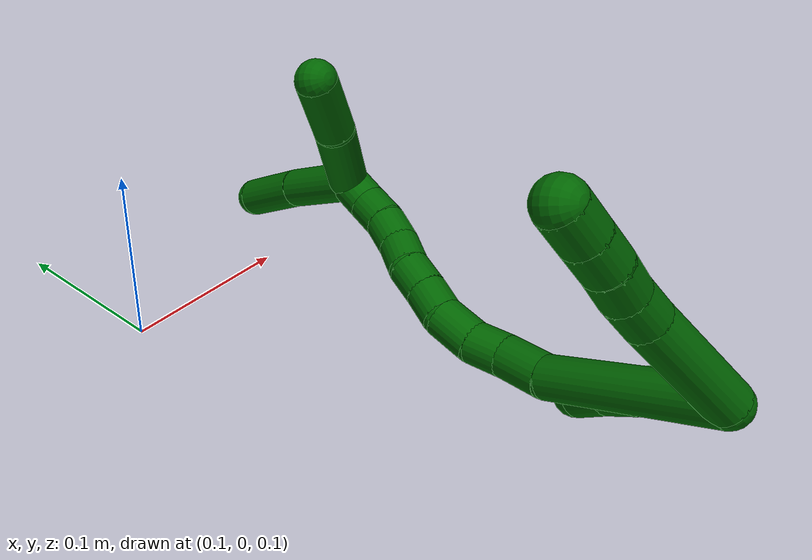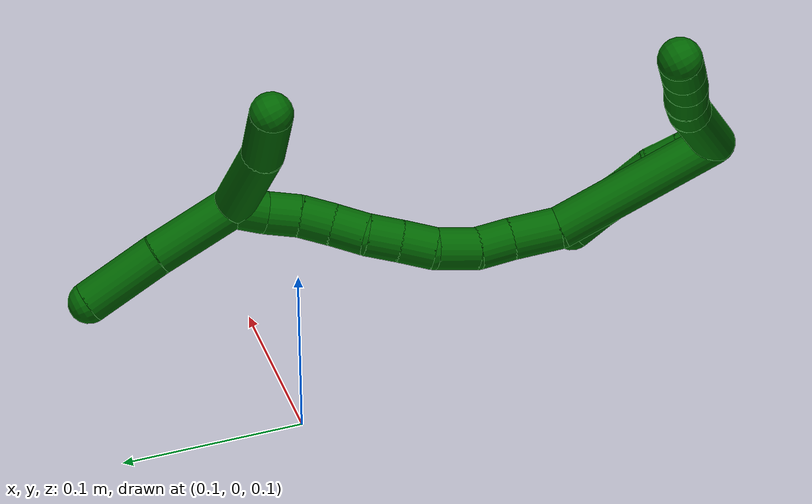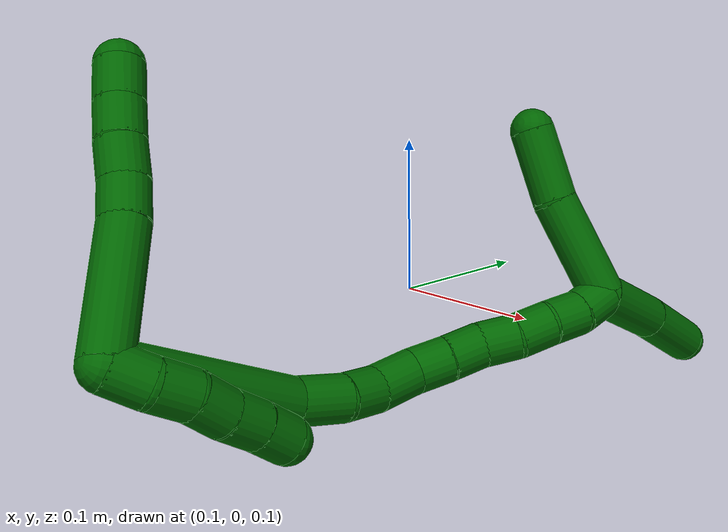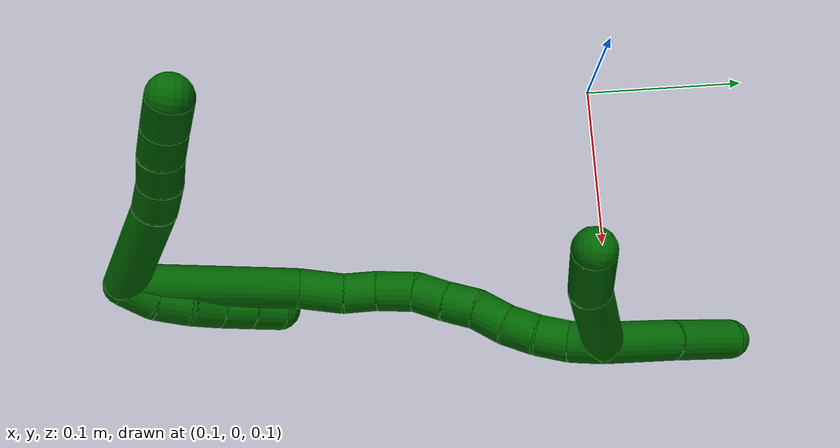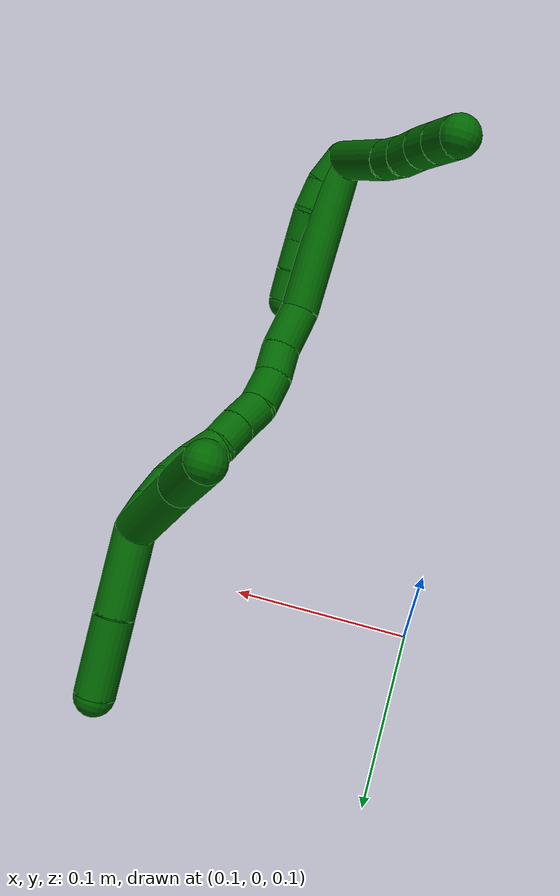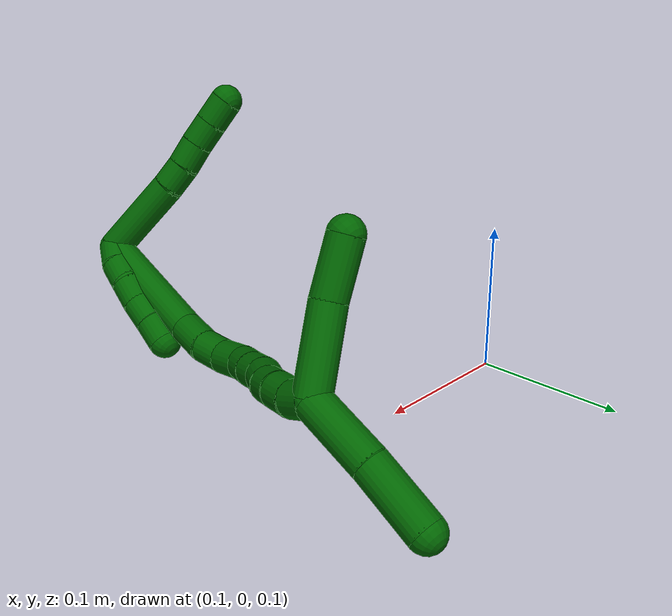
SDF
<sdf version="1.7">
 <world name="default">
  <model name="6">
   <static>0</static>
   <link name="6">
    <collision name="collision-cylinder-e_1_2_8">
     <pose>0.003368 0.033645 -0.003566 -1.67638 0.099217 -0.110266</pose>
     <geometry><cylinder><radius>0.0125</radius><length>0.068002</length></cylinder></geometry>
     <surface>
      <friction><ode><mu>1.16</mu><mu2>1.16</mu2><slip1>0</slip1><slip2>0</slip2></ode></friction>
      <contact><ode><kp>1e+06</kp><kd>1</kd><max_vel>0</max_vel><min_depth>0.001</min_depth></ode></contact>
     </surface>
    </collision>
    <visual name="visual-cylinder-e_1_2_8">
     <pose>0.003368 0.033645 -0.003566 -1.67638 0.099217 -0.110266</pose>
     <geometry><cylinder><radius>0.0125</radius><length>0.068002</length></cylinder></geometry>
     <material><ambient>0 0.392157 0.003922 1</ambient></material>
    </visual>
    <collision name="collision-cylinder-e_2_8_9">
     <pose>0.007482 0.077529 -0.00703 -1.56086 0.072753 -0.072034</pose>
     <geometry><cylinder><radius>0.0125</radius><length>0.020532</length></cylinder></geometry>
     <surface>
      <friction><ode><mu>1.16</mu><mu2>1.16</mu2><slip1>0</slip1><slip2>0</slip2></ode></friction>
      <contact><ode><kp>1e+06</kp><kd>1</kd><max_vel>0</max_vel><min_depth>0.001</min_depth></ode></contact>
     </surface>
    </collision>
    <visual name="visual-cylinder-e_2_8_9">
     <pose>0.007482 0.077529 -0.00703 -1.56086 0.072753 -0.072034</pose>
     <geometry><cylinder><radius>0.0125</radius><length>0.020532</length></cylinder></geometry>
     <material><ambient>0 0.392157 0.003922 1</ambient></material>
    </visual>
    <collision name="collision-cylinder-e_3_9_10">
     <pose>0.009165 0.097794 -0.005631 -1.44221 0.092361 -0.0812</pose>
     <geometry><cylinder><radius>0.0125</radius><length>0.020308</length></cylinder></geometry>
     <surface>
      <friction><ode><mu>1.16</mu><mu2>1.16</mu2><slip1>0</slip1><slip2>0</slip2></ode></friction>
      <contact><ode><kp>1e+06</kp><kd>1</kd><max_vel>0</max_vel><min_depth>0.001</min_depth></ode></contact>
     </surface>
    </collision>
    <visual name="visual-cylinder-e_3_9_10">
     <pose>0.009165 0.097794 -0.005631 -1.44221 0.092361 -0.0812</pose>
     <geometry><cylinder><radius>0.0125</radius><length>0.020308</length></cylinder></geometry>
     <material><ambient>0 0.392157 0.003922 1</ambient></material>
    </visual>
    <collision name="collision-cylinder-e_4_10_11">
     <pose>0.011046 0.117792 -0.003811 -1.51832 0.094322 -0.089504</pose>
     <geometry><cylinder><radius>0.0125</radius><length>0.020057</length></cylinder></geometry>
     <surface>
      <friction><ode><mu>1.16</mu><mu2>1.16</mu2><slip1>0</slip1><slip2>0</slip2></ode></friction>
      <contact><ode><kp>1e+06</kp><kd>1</kd><max_vel>0</max_vel><min_depth>0.001</min_depth></ode></contact>
     </surface>
    </collision>
    <visual name="visual-cylinder-e_4_10_11">
     <pose>0.011046 0.117792 -0.003811 -1.51832 0.094322 -0.089504</pose>
     <geometry><cylinder><radius>0.0125</radius><length>0.020057</length></cylinder></geometry>
     <material><ambient>0 0.392157 0.003922 1</ambient></material>
    </visual>
    <collision name="collision-cylinder-e_5_11_6">
     <pose>0.013093 0.138246 -0.002867 -1.53071 0.104668 -0.100561</pose>
     <geometry><cylinder><radius>0.0125</radius><length>0.021101</length></cylinder></geometry>
     <surface>
      <friction><ode><mu>1.16</mu><mu2>1.16</mu2><slip1>0</slip1><slip2>0</slip2></ode></friction>
      <contact><ode><kp>1e+06</kp><kd>1</kd><max_vel>0</max_vel><min_depth>0.001</min_depth></ode></contact>
     </surface>
    </collision>
    <visual name="visual-cylinder-e_5_11_6">
     <pose>0.013093 0.138246 -0.002867 -1.53071 0.104668 -0.100561</pose>
     <geometry><cylinder><radius>0.0125</radius><length>0.021101</length></cylinder></geometry>
     <material><ambient>0 0.392157 0.003922 1</ambient></material>
    </visual>
    <collision name="collision-cylinder-e_1_2_12">
     <pose>0.0024 -0.003261 -0.009144 2.79898 0.242343 1.22661</pose>
     <geometry><cylinder><radius>0.0125</radius><length>0.02</length></cylinder></geometry>
     <surface>
      <friction><ode><mu>1.16</mu><mu2>1.16</mu2><slip1>0</slip1><slip2>0</slip2></ode></friction>
      <contact><ode><kp>1e+06</kp><kd>1</kd><max_vel>0</max_vel><min_depth>0.001</min_depth></ode></contact>
     </surface>
    </collision>
    <visual name="visual-cylinder-e_1_2_12">
     <pose>0.0024 -0.003261 -0.009144 2.79898 0.242343 1.22661</pose>
     <geometry><cylinder><radius>0.0125</radius><length>0.02</length></cylinder></geometry>
     <material><ambient>0 0.392157 0.003922 1</ambient></material>
    </visual>
    <collision name="collision-cylinder-e_2_12_13">
     <pose>0.005497 -0.007822 -0.028178 3.01098 0.069783 0.98051</pose>
     <geometry><cylinder><radius>0.0125</radius><length>0.02</length></cylinder></geometry>
     <surface>
      <friction><ode><mu>1.16</mu><mu2>1.16</mu2><slip1>0</slip1><slip2>0</slip2></ode></friction>
      <contact><ode><kp>1e+06</kp><kd>1</kd><max_vel>0</max_vel><min_depth>0.001</min_depth></ode></contact>
     </surface>
    </collision>
    <visual name="visual-cylinder-e_2_12_13">
     <pose>0.005497 -0.007822 -0.028178 3.01098 0.069783 0.98051</pose>
     <geometry><cylinder><radius>0.0125</radius><length>0.02</length></cylinder></geometry>
     <material><ambient>0 0.392157 0.003922 1</ambient></material>
    </visual>
    <collision name="collision-cylinder-e_3_13_14">
     <pose>0.004945 -0.011241 -0.047761 2.92624 -0.12524 -1.05128</pose>
     <geometry><cylinder><radius>0.0125</radius><length>0.02</length></cylinder></geometry>
     <surface>
      <friction><ode><mu>1.16</mu><mu2>1.16</mu2><slip1>0</slip1><slip2>0</slip2></ode></friction>
      <contact><ode><kp>1e+06</kp><kd>1</kd><max_vel>0</max_vel><min_depth>0.001</min_depth></ode></contact>
     </surface>
    </collision>
    <visual name="visual-cylinder-e_3_13_14">
     <pose>0.004945 -0.011241 -0.047761 2.92624 -0.12524 -1.05128</pose>
     <geometry><cylinder><radius>0.0125</radius><length>0.02</length></cylinder></geometry>
     <material><ambient>0 0.392157 0.003922 1</ambient></material>
    </visual>
    <collision name="collision-cylinder-e_4_14_15">
     <pose>0.002808 -0.01446 -0.067353 3.03114 -0.088903 -1.35508</pose>
     <geometry><cylinder><radius>0.0125</radius><length>0.02</length></cylinder></geometry>
     <surface>
      <friction><ode><mu>1.16</mu><mu2>1.16</mu2><slip1>0</slip1><slip2>0</slip2></ode></friction>
      <contact><ode><kp>1e+06</kp><kd>1</kd><max_vel>0</max_vel><min_depth>0.001</min_depth></ode></contact>
     </surface>
    </collision>
    <visual name="visual-cylinder-e_4_14_15">
     <pose>0.002808 -0.01446 -0.067353 3.03114 -0.088903 -1.35508</pose>
     <geometry><cylinder><radius>0.0125</radius><length>0.02</length></cylinder></geometry>
     <material><ambient>0 0.392157 0.003922 1</ambient></material>
    </visual>
    <collision name="collision-cylinder-e_5_15_5">
     <pose>0.000528 -0.0172 -0.087019 2.97499 -0.139705 -1.39492</pose>
     <geometry><cylinder><radius>0.0125</radius><length>0.02</length></cylinder></geometry>
     <surface>
      <friction><ode><mu>1.16</mu><mu2>1.16</mu2><slip1>0</slip1><slip2>0</slip2></ode></friction>
      <contact><ode><kp>1e+06</kp><kd>1</kd><max_vel>0</max_vel><min_depth>0.001</min_depth></ode></contact>
     </surface>
    </collision>
    <visual name="visual-cylinder-e_5_15_5">
     <pose>0.000528 -0.0172 -0.087019 2.97499 -0.139705 -1.39492</pose>
     <geometry><cylinder><radius>0.0125</radius><length>0.02</length></cylinder></geometry>
     <material><ambient>0 0.392157 0.003922 1</ambient></material>
    </visual>
    <collision name="collision-cylinder-e_1_2_16">
     <pose>-0.000639 0.000644 -0.051547 -3.1291 -0.012392 1.563</pose>
     <geometry><cylinder><radius>0.0125</radius><length>0.10311</length></cylinder></geometry>
     <surface>
      <friction><ode><mu>1.16</mu><mu2>1.16</mu2><slip1>0</slip1><slip2>0</slip2></ode></friction>
      <contact><ode><kp>1e+06</kp><kd>1</kd><max_vel>0</max_vel><min_depth>0.001</min_depth></ode></contact>
     </surface>
    </collision>
    <visual name="visual-cylinder-e_1_2_16">
     <pose>-0.000639 0.000644 -0.051547 -3.1291 -0.012392 1.563</pose>
     <geometry><cylinder><radius>0.0125</radius><length>0.10311</length></cylinder></geometry>
     <material><ambient>0 0.392157 0.003922 1</ambient></material>
    </visual>
    <collision name="collision-cylinder-e_2_16_17">
     <pose>0.002182 0.003276 -0.117011 -2.99969 0.241313 -2.08121</pose>
     <geometry><cylinder><radius>0.0125</radius><length>0.028956</length></cylinder></geometry>
     <surface>
      <friction><ode><mu>1.16</mu><mu2>1.16</mu2><slip1>0</slip1><slip2>0</slip2></ode></friction>
      <contact><ode><kp>1e+06</kp><kd>1</kd><max_vel>0</max_vel><min_depth>0.001</min_depth></ode></contact>
     </surface>
    </collision>
    <visual name="visual-cylinder-e_2_16_17">
     <pose>0.002182 0.003276 -0.117011 -2.99969 0.241313 -2.08121</pose>
     <geometry><cylinder><radius>0.0125</radius><length>0.028956</length></cylinder></geometry>
     <material><ambient>0 0.392157 0.003922 1</ambient></material>
    </visual>
    <collision name="collision-cylinder-e_3_17_18">
     <pose>0.007113 0.008691 -0.140998 -2.81361 0.137402 -0.788135</pose>
     <geometry><cylinder><radius>0.0125</radius><length>0.021477</length></cylinder></geometry>
     <surface>
      <friction><ode><mu>1.16</mu><mu2>1.16</mu2><slip1>0</slip1><slip2>0</slip2></ode></friction>
      <contact><ode><kp>1e+06</kp><kd>1</kd><max_vel>0</max_vel><min_depth>0.001</min_depth></ode></contact>
     </surface>
    </collision>
    <visual name="visual-cylinder-e_3_17_18">
     <pose>0.007113 0.008691 -0.140998 -2.81361 0.137402 -0.788135</pose>
     <geometry><cylinder><radius>0.0125</radius><length>0.021477</length></cylinder></geometry>
     <material><ambient>0 0.392157 0.003922 1</ambient></material>
    </visual>
    <collision name="collision-cylinder-e_4_18_19">
     <pose>0.013196 0.017235 -0.161516 -2.68608 0.377423 -1.37841</pose>
     <geometry><cylinder><radius>0.0125</radius><length>0.025029</length></cylinder></geometry>
     <surface>
      <friction><ode><mu>1.16</mu><mu2>1.16</mu2><slip1>0</slip1><slip2>0</slip2></ode></friction>
      <contact><ode><kp>1e+06</kp><kd>1</kd><max_vel>0</max_vel><min_depth>0.001</min_depth></ode></contact>
     </surface>
    </collision>
    <visual name="visual-cylinder-e_4_18_19">
     <pose>0.013196 0.017235 -0.161516 -2.68608 0.377423 -1.37841</pose>
     <geometry><cylinder><radius>0.0125</radius><length>0.025029</length></cylinder></geometry>
     <material><ambient>0 0.392157 0.003922 1</ambient></material>
    </visual>
    <collision name="collision-cylinder-e_5_19_20">
     <pose>0.024027 0.025027 -0.179711 -2.80931 0.64914 -2.2169</pose>
     <geometry><cylinder><radius>0.0125</radius><length>0.020577</length></cylinder></geometry>
     <surface>
      <friction><ode><mu>1.16</mu><mu2>1.16</mu2><slip1>0</slip1><slip2>0</slip2></ode></friction>
      <contact><ode><kp>1e+06</kp><kd>1</kd><max_vel>0</max_vel><min_depth>0.001</min_depth></ode></contact>
     </surface>
    </collision>
    <visual name="visual-cylinder-e_5_19_20">
     <pose>0.024027 0.025027 -0.179711 -2.80931 0.64914 -2.2169</pose>
     <geometry><cylinder><radius>0.0125</radius><length>0.020577</length></cylinder></geometry>
     <material><ambient>0 0.392157 0.003922 1</ambient></material>
    </visual>
    <collision name="collision-cylinder-e_6_20_21">
     <pose>0.035972 0.03087 -0.195146 -2.75047 0.603008 -2.00726</pose>
     <geometry><cylinder><radius>0.0125</radius><length>0.020194</length></cylinder></geometry>
     <surface>
      <friction><ode><mu>1.16</mu><mu2>1.16</mu2><slip1>0</slip1><slip2>0</slip2></ode></friction>
      <contact><ode><kp>1e+06</kp><kd>1</kd><max_vel>0</max_vel><min_depth>0.001</min_depth></ode></contact>
     </surface>
    </collision>
    <visual name="visual-cylinder-e_6_20_21">
     <pose>0.035972 0.03087 -0.195146 -2.75047 0.603008 -2.00726</pose>
     <geometry><cylinder><radius>0.0125</radius><length>0.020194</length></cylinder></geometry>
     <material><ambient>0 0.392157 0.003922 1</ambient></material>
    </visual>
    <collision name="collision-cylinder-e_7_21_22">
     <pose>0.048782 0.035198 -0.210089 -2.98343 0.767149 -2.75379</pose>
     <geometry><cylinder><radius>0.0125</radius><length>0.02041</length></cylinder></geometry>
     <surface>
      <friction><ode><mu>1.16</mu><mu2>1.16</mu2><slip1>0</slip1><slip2>0</slip2></ode></friction>
      <contact><ode><kp>1e+06</kp><kd>1</kd><max_vel>0</max_vel><min_depth>0.001</min_depth></ode></contact>
     </surface>
    </collision>
    <visual name="visual-cylinder-e_7_21_22">
     <pose>0.048782 0.035198 -0.210089 -2.98343 0.767149 -2.75379</pose>
     <geometry><cylinder><radius>0.0125</radius><length>0.02041</length></cylinder></geometry>
     <material><ambient>0 0.392157 0.003922 1</ambient></material>
    </visual>
    <collision name="collision-cylinder-e_8_22_23">
     <pose>0.062192 0.039204 -0.224607 -2.7678 0.681422 -2.16159</pose>
     <geometry><cylinder><radius>0.0125</radius><length>0.020089</length></cylinder></geometry>
     <surface>
      <friction><ode><mu>1.16</mu><mu2>1.16</mu2><slip1>0</slip1><slip2>0</slip2></ode></friction>
      <contact><ode><kp>1e+06</kp><kd>1</kd><max_vel>0</max_vel><min_depth>0.001</min_depth></ode></contact>
     </surface>
    </collision>
    <visual name="visual-cylinder-e_8_22_23">
     <pose>0.062192 0.039204 -0.224607 -2.7678 0.681422 -2.16159</pose>
     <geometry><cylinder><radius>0.0125</radius><length>0.020089</length></cylinder></geometry>
     <material><ambient>0 0.392157 0.003922 1</ambient></material>
    </visual>
    <collision name="collision-cylinder-e_9_23_24">
     <pose>0.07347 0.045032 -0.240078 -2.79336 0.515732 -1.9652</pose>
     <geometry><cylinder><radius>0.0125</radius><length>0.020076</length></cylinder></geometry>
     <surface>
      <friction><ode><mu>1.16</mu><mu2>1.16</mu2><slip1>0</slip1><slip2>0</slip2></ode></friction>
      <contact><ode><kp>1e+06</kp><kd>1</kd><max_vel>0</max_vel><min_depth>0.001</min_depth></ode></contact>
     </surface>
    </collision>
    <visual name="visual-cylinder-e_9_23_24">
     <pose>0.07347 0.045032 -0.240078 -2.79336 0.515732 -1.9652</pose>
     <geometry><cylinder><radius>0.0125</radius><length>0.020076</length></cylinder></geometry>
     <material><ambient>0 0.392157 0.003922 1</ambient></material>
    </visual>
    <collision name="collision-cylinder-e_10_24_1">
     <pose>0.083146 0.053246 -0.255435 -2.50965 0.489988 -1.30576</pose>
     <geometry><cylinder><radius>0.0125</radius><length>0.020083</length></cylinder></geometry>
     <surface>
      <friction><ode><mu>1.16</mu><mu2>1.16</mu2><slip1>0</slip1><slip2>0</slip2></ode></friction>
      <contact><ode><kp>1e+06</kp><kd>1</kd><max_vel>0</max_vel><min_depth>0.001</min_depth></ode></contact>
     </surface>
    </collision>
    <visual name="visual-cylinder-e_10_24_1">
     <pose>0.083146 0.053246 -0.255435 -2.50965 0.489988 -1.30576</pose>
     <geometry><cylinder><radius>0.0125</radius><length>0.020083</length></cylinder></geometry>
     <material><ambient>0 0.392157 0.003922 1</ambient></material>
    </visual>
    <collision name="collision-cylinder-e_1_1_25">
     <pose>0.086052 0.058318 -0.288296 3.13533 -0.070646 -2.96478</pose>
     <geometry><cylinder><radius>0.0125</radius><length>0.051554</length></cylinder></geometry>
     <surface>
      <friction><ode><mu>1.16</mu><mu2>1.16</mu2><slip1>0</slip1><slip2>0</slip2></ode></friction>
      <contact><ode><kp>1e+06</kp><kd>1</kd><max_vel>0</max_vel><min_depth>0.001</min_depth></ode></contact>
     </surface>
    </collision>
    <visual name="visual-cylinder-e_1_1_25">
     <pose>0.086052 0.058318 -0.288296 3.13533 -0.070646 -2.96478</pose>
     <geometry><cylinder><radius>0.0125</radius><length>0.051554</length></cylinder></geometry>
     <material><ambient>0 0.392157 0.003922 1</ambient></material>
    </visual>
    <collision name="collision-cylinder-e_2_25_4">
     <pose>0.081817 0.056497 -0.338053 3.07267 -0.099901 -1.93409</pose>
     <geometry><cylinder><radius>0.0125</radius><length>0.048446</length></cylinder></geometry>
     <surface>
      <friction><ode><mu>1.16</mu><mu2>1.16</mu2><slip1>0</slip1><slip2>0</slip2></ode></friction>
      <contact><ode><kp>1e+06</kp><kd>1</kd><max_vel>0</max_vel><min_depth>0.001</min_depth></ode></contact>
     </surface>
    </collision>
    <visual name="visual-cylinder-e_2_25_4">
     <pose>0.081817 0.056497 -0.338053 3.07267 -0.099901 -1.93409</pose>
     <geometry><cylinder><radius>0.0125</radius><length>0.048446</length></cylinder></geometry>
     <material><ambient>0 0.392157 0.003922 1</ambient></material>
    </visual>
    <collision name="collision-cylinder-e_1_1_26">
     <pose>0.089937 0.08279 -0.246093 -0.974768 0.070186 -0.037212</pose>
     <geometry><cylinder><radius>0.0125</radius><length>0.058896</length></cylinder></geometry>
     <surface>
      <friction><ode><mu>1.16</mu><mu2>1.16</mu2><slip1>0</slip1><slip2>0</slip2></ode></friction>
      <contact><ode><kp>1e+06</kp><kd>1</kd><max_vel>0</max_vel><min_depth>0.001</min_depth></ode></contact>
     </surface>
    </collision>
    <visual name="visual-cylinder-e_1_1_26">
     <pose>0.089937 0.08279 -0.246093 -0.974768 0.070186 -0.037212</pose>
     <geometry><cylinder><radius>0.0125</radius><length>0.058896</length></cylinder></geometry>
     <material><ambient>0 0.392157 0.003922 1</ambient></material>
    </visual>
    <collision name="collision-cylinder-e_2_26_3">
     <pose>0.095455 0.125445 -0.221004 -1.13245 0.168823 -0.107466</pose>
     <geometry><cylinder><radius>0.0125</radius><length>0.041104</length></cylinder></geometry>
     <surface>
      <friction><ode><mu>1.16</mu><mu2>1.16</mu2><slip1>0</slip1><slip2>0</slip2></ode></friction>
      <contact><ode><kp>1e+06</kp><kd>1</kd><max_vel>0</max_vel><min_depth>0.001</min_depth></ode></contact>
     </surface>
    </collision>
    <visual name="visual-cylinder-e_2_26_3">
     <pose>0.095455 0.125445 -0.221004 -1.13245 0.168823 -0.107466</pose>
     <geometry><cylinder><radius>0.0125</radius><length>0.041104</length></cylinder></geometry>
     <material><ambient>0 0.392157 0.003922 1</ambient></material>
    </visual>
    <collision name="collision-sphere-3">
     <pose>0.098908 0.143789 -0.212405 0 -0 0</pose>
     <geometry><sphere><radius>0.0125</radius></sphere></geometry>
     <surface>
      <friction><ode><mu>1.16</mu><mu2>1.16</mu2><slip1>0</slip1><slip2>0</slip2></ode></friction>
      <contact><ode><kp>1e+06</kp><kd>1</kd><max_vel>0</max_vel><min_depth>0.001</min_depth></ode></contact>
     </surface>
    </collision>
    <visual name="visual-sphere-3">
     <pose>0.098908 0.143789 -0.212405 0 -0 0</pose>
     <geometry><sphere><radius>0.0125</radius></sphere></geometry>
     <material><ambient>0 0.392157 0.003922 1</ambient></material>
    </visual>
    <collision name="collision-sphere-26">
     <pose>0.092002 0.1071 -0.229603 0 -0 0</pose>
     <geometry><sphere><radius>0.0125</radius></sphere></geometry>
     <surface>
      <friction><ode><mu>1.16</mu><mu2>1.16</mu2><slip1>0</slip1><slip2>0</slip2></ode></friction>
      <contact><ode><kp>1e+06</kp><kd>1</kd><max_vel>0</max_vel><min_depth>0.001</min_depth></ode></contact>
     </surface>
    </collision>
    <visual name="visual-sphere-26">
     <pose>0.092002 0.1071 -0.229603 0 -0 0</pose>
     <geometry><sphere><radius>0.0125</radius></sphere></geometry>
     <material><ambient>0 0.392157 0.003922 1</ambient></material>
    </visual>
    <collision name="collision-sphere-4">
     <pose>0.079401 0.054837 -0.362098 0 -0 0</pose>
     <geometry><sphere><radius>0.0125</radius></sphere></geometry>
     <surface>
      <friction><ode><mu>1.16</mu><mu2>1.16</mu2><slip1>0</slip1><slip2>0</slip2></ode></friction>
      <contact><ode><kp>1e+06</kp><kd>1</kd><max_vel>0</max_vel><min_depth>0.001</min_depth></ode></contact>
     </surface>
    </collision>
    <visual name="visual-sphere-4">
     <pose>0.079401 0.054837 -0.362098 0 -0 0</pose>
     <geometry><sphere><radius>0.0125</radius></sphere></geometry>
     <material><ambient>0 0.392157 0.003922 1</ambient></material>
    </visual>
    <collision name="collision-sphere-25">
     <pose>0.084232 0.058157 -0.314008 0 -0 0</pose>
     <geometry><sphere><radius>0.0125</radius></sphere></geometry>
     <surface>
      <friction><ode><mu>1.16</mu><mu2>1.16</mu2><slip1>0</slip1><slip2>0</slip2></ode></friction>
      <contact><ode><kp>1e+06</kp><kd>1</kd><max_vel>0</max_vel><min_depth>0.001</min_depth></ode></contact>
     </surface>
    </collision>
    <visual name="visual-sphere-25">
     <pose>0.084232 0.058157 -0.314008 0 -0 0</pose>
     <geometry><sphere><radius>0.0125</radius></sphere></geometry>
     <material><ambient>0 0.392157 0.003922 1</ambient></material>
    </visual>
    <collision name="collision-sphere-1">
     <pose>0.087871 0.058479 -0.262584 0 -0 0</pose>
     <geometry><sphere><radius>0.0125</radius></sphere></geometry>
     <surface>
      <friction><ode><mu>1.16</mu><mu2>1.16</mu2><slip1>0</slip1><slip2>0</slip2></ode></friction>
      <contact><ode><kp>1e+06</kp><kd>1</kd><max_vel>0</max_vel><min_depth>0.001</min_depth></ode></contact>
     </surface>
    </collision>
    <visual name="visual-sphere-1">
     <pose>0.087871 0.058479 -0.262584 0 -0 0</pose>
     <geometry><sphere><radius>0.0125</radius></sphere></geometry>
     <material><ambient>0 0.392157 0.003922 1</ambient></material>
    </visual>
    <collision name="collision-sphere-24">
     <pose>0.07842 0.048012 -0.248286 0 -0 0</pose>
     <geometry><sphere><radius>0.0125</radius></sphere></geometry>
     <surface>
      <friction><ode><mu>1.16</mu><mu2>1.16</mu2><slip1>0</slip1><slip2>0</slip2></ode></friction>
      <contact><ode><kp>1e+06</kp><kd>1</kd><max_vel>0</max_vel><min_depth>0.001</min_depth></ode></contact>
     </surface>
    </collision>
    <visual name="visual-sphere-24">
     <pose>0.07842 0.048012 -0.248286 0 -0 0</pose>
     <geometry><sphere><radius>0.0125</radius></sphere></geometry>
     <material><ambient>0 0.392157 0.003922 1</ambient></material>
    </visual>
    <collision name="collision-sphere-23">
     <pose>0.068519 0.042052 -0.231869 0 -0 0</pose>
     <geometry><sphere><radius>0.0125</radius></sphere></geometry>
     <surface>
      <friction><ode><mu>1.16</mu><mu2>1.16</mu2><slip1>0</slip1><slip2>0</slip2></ode></friction>
      <contact><ode><kp>1e+06</kp><kd>1</kd><max_vel>0</max_vel><min_depth>0.001</min_depth></ode></contact>
     </surface>
    </collision>
    <visual name="visual-sphere-23">
     <pose>0.068519 0.042052 -0.231869 0 -0 0</pose>
     <geometry><sphere><radius>0.0125</radius></sphere></geometry>
     <material><ambient>0 0.392157 0.003922 1</ambient></material>
    </visual>
    <collision name="collision-sphere-22">
     <pose>0.055865 0.036355 -0.217344 0 -0 0</pose>
     <geometry><sphere><radius>0.0125</radius></sphere></geometry>
     <surface>
      <friction><ode><mu>1.16</mu><mu2>1.16</mu2><slip1>0</slip1><slip2>0</slip2></ode></friction>
      <contact><ode><kp>1e+06</kp><kd>1</kd><max_vel>0</max_vel><min_depth>0.001</min_depth></ode></contact>
     </surface>
    </collision>
    <visual name="visual-sphere-22">
     <pose>0.055865 0.036355 -0.217344 0 -0 0</pose>
     <geometry><sphere><radius>0.0125</radius></sphere></geometry>
     <material><ambient>0 0.392157 0.003922 1</ambient></material>
    </visual>
    <collision name="collision-sphere-21">
     <pose>0.041698 0.034041 -0.202834 0 -0 0</pose>
     <geometry><sphere><radius>0.0125</radius></sphere></geometry>
     <surface>
      <friction><ode><mu>1.16</mu><mu2>1.16</mu2><slip1>0</slip1><slip2>0</slip2></ode></friction>
      <contact><ode><kp>1e+06</kp><kd>1</kd><max_vel>0</max_vel><min_depth>0.001</min_depth></ode></contact>
     </surface>
    </collision>
    <visual name="visual-sphere-21">
     <pose>0.041698 0.034041 -0.202834 0 -0 0</pose>
     <geometry><sphere><radius>0.0125</radius></sphere></geometry>
     <material><ambient>0 0.392157 0.003922 1</ambient></material>
    </visual>
    <collision name="collision-sphere-6">
     <pose>0.014195 0.148731 -0.002446 0 -0 0</pose>
     <geometry><sphere><radius>0.0125</radius></sphere></geometry>
     <surface>
      <friction><ode><mu>1.16</mu><mu2>1.16</mu2><slip1>0</slip1><slip2>0</slip2></ode></friction>
      <contact><ode><kp>1e+06</kp><kd>1</kd><max_vel>0</max_vel><min_depth>0.001</min_depth></ode></contact>
     </surface>
    </collision>
    <visual name="visual-sphere-6">
     <pose>0.014195 0.148731 -0.002446 0 -0 0</pose>
     <geometry><sphere><radius>0.0125</radius></sphere></geometry>
     <material><ambient>0 0.392157 0.003922 1</ambient></material>
    </visual>
    <collision name="collision-sphere-11">
     <pose>0.01199 0.127762 -0.003287 0 -0 0</pose>
     <geometry><sphere><radius>0.0125</radius></sphere></geometry>
     <surface>
      <friction><ode><mu>1.16</mu><mu2>1.16</mu2><slip1>0</slip1><slip2>0</slip2></ode></friction>
      <contact><ode><kp>1e+06</kp><kd>1</kd><max_vel>0</max_vel><min_depth>0.001</min_depth></ode></contact>
     </surface>
    </collision>
    <visual name="visual-sphere-11">
     <pose>0.01199 0.127762 -0.003287 0 -0 0</pose>
     <geometry><sphere><radius>0.0125</radius></sphere></geometry>
     <material><ambient>0 0.392157 0.003922 1</ambient></material>
    </visual>
    <collision name="collision-sphere-10">
     <pose>0.010101 0.107821 -0.004335 0 -0 0</pose>
     <geometry><sphere><radius>0.0125</radius></sphere></geometry>
     <surface>
      <friction><ode><mu>1.16</mu><mu2>1.16</mu2><slip1>0</slip1><slip2>0</slip2></ode></friction>
      <contact><ode><kp>1e+06</kp><kd>1</kd><max_vel>0</max_vel><min_depth>0.001</min_depth></ode></contact>
     </surface>
    </collision>
    <visual name="visual-sphere-10">
     <pose>0.010101 0.107821 -0.004335 0 -0 0</pose>
     <geometry><sphere><radius>0.0125</radius></sphere></geometry>
     <material><ambient>0 0.392157 0.003922 1</ambient></material>
    </visual>
    <collision name="collision-sphere-9">
     <pose>0.008228 0.087767 -0.006928 0 -0 0</pose>
     <geometry><sphere><radius>0.0125</radius></sphere></geometry>
     <surface>
      <friction><ode><mu>1.16</mu><mu2>1.16</mu2><slip1>0</slip1><slip2>0</slip2></ode></friction>
      <contact><ode><kp>1e+06</kp><kd>1</kd><max_vel>0</max_vel><min_depth>0.001</min_depth></ode></contact>
     </surface>
    </collision>
    <visual name="visual-sphere-9">
     <pose>0.008228 0.087767 -0.006928 0 -0 0</pose>
     <geometry><sphere><radius>0.0125</radius></sphere></geometry>
     <material><ambient>0 0.392157 0.003922 1</ambient></material>
    </visual>
    <collision name="collision-sphere-2">
     <geometry><sphere><radius>0.0125</radius></sphere></geometry>
     <surface>
      <friction><ode><mu>1.16</mu><mu2>1.16</mu2><slip1>0</slip1><slip2>0</slip2></ode></friction>
      <contact><ode><kp>1e+06</kp><kd>1</kd><max_vel>0</max_vel><min_depth>0.001</min_depth></ode></contact>
     </surface>
    </collision>
    <visual name="visual-sphere-2">
     <geometry><sphere><radius>0.0125</radius></sphere></geometry>
     <material><ambient>0 0.392157 0.003922 1</ambient></material>
    </visual>
    <collision name="collision-sphere-19">
     <pose>0.017808 0.022353 -0.171963 0 -0 0</pose>
     <geometry><sphere><radius>0.0125</radius></sphere></geometry>
     <surface>
      <friction><ode><mu>1.16</mu><mu2>1.16</mu2><slip1>0</slip1><slip2>0</slip2></ode></friction>
      <contact><ode><kp>1e+06</kp><kd>1</kd><max_vel>0</max_vel><min_depth>0.001</min_depth></ode></contact>
     </surface>
    </collision>
    <visual name="visual-sphere-19">
     <pose>0.017808 0.022353 -0.171963 0 -0 0</pose>
     <geometry><sphere><radius>0.0125</radius></sphere></geometry>
     <material><ambient>0 0.392157 0.003922 1</ambient></material>
    </visual>
    <collision name="collision-sphere-8">
     <pose>0.006736 0.067291 -0.007131 0 -0 0</pose>
     <geometry><sphere><radius>0.0125</radius></sphere></geometry>
     <surface>
      <friction><ode><mu>1.16</mu><mu2>1.16</mu2><slip1>0</slip1><slip2>0</slip2></ode></friction>
      <contact><ode><kp>1e+06</kp><kd>1</kd><max_vel>0</max_vel><min_depth>0.001</min_depth></ode></contact>
     </surface>
    </collision>
    <visual name="visual-sphere-8">
     <pose>0.006736 0.067291 -0.007131 0 -0 0</pose>
     <geometry><sphere><radius>0.0125</radius></sphere></geometry>
     <material><ambient>0 0.392157 0.003922 1</ambient></material>
    </visual>
    <collision name="collision-sphere-12">
     <pose>0.0048 -0.006523 -0.018287 0 -0 0</pose>
     <geometry><sphere><radius>0.0125</radius></sphere></geometry>
     <surface>
      <friction><ode><mu>1.16</mu><mu2>1.16</mu2><slip1>0</slip1><slip2>0</slip2></ode></friction>
      <contact><ode><kp>1e+06</kp><kd>1</kd><max_vel>0</max_vel><min_depth>0.001</min_depth></ode></contact>
     </surface>
    </collision>
    <visual name="visual-sphere-12">
     <pose>0.0048 -0.006523 -0.018287 0 -0 0</pose>
     <geometry><sphere><radius>0.0125</radius></sphere></geometry>
     <material><ambient>0 0.392157 0.003922 1</ambient></material>
    </visual>
    <collision name="collision-sphere-13">
     <pose>0.006194 -0.009121 -0.038068 0 -0 0</pose>
     <geometry><sphere><radius>0.0125</radius></sphere></geometry>
     <surface>
      <friction><ode><mu>1.16</mu><mu2>1.16</mu2><slip1>0</slip1><slip2>0</slip2></ode></friction>
      <contact><ode><kp>1e+06</kp><kd>1</kd><max_vel>0</max_vel><min_depth>0.001</min_depth></ode></contact>
     </surface>
    </collision>
    <visual name="visual-sphere-13">
     <pose>0.006194 -0.009121 -0.038068 0 -0 0</pose>
     <geometry><sphere><radius>0.0125</radius></sphere></geometry>
     <material><ambient>0 0.392157 0.003922 1</ambient></material>
    </visual>
    <collision name="collision-sphere-14">
     <pose>0.003696 -0.013362 -0.057453 0 -0 0</pose>
     <geometry><sphere><radius>0.0125</radius></sphere></geometry>
     <surface>
      <friction><ode><mu>1.16</mu><mu2>1.16</mu2><slip1>0</slip1><slip2>0</slip2></ode></friction>
      <contact><ode><kp>1e+06</kp><kd>1</kd><max_vel>0</max_vel><min_depth>0.001</min_depth></ode></contact>
     </surface>
    </collision>
    <visual name="visual-sphere-14">
     <pose>0.003696 -0.013362 -0.057453 0 -0 0</pose>
     <geometry><sphere><radius>0.0125</radius></sphere></geometry>
     <material><ambient>0 0.392157 0.003922 1</ambient></material>
    </visual>
    <collision name="collision-sphere-15">
     <pose>0.00192 -0.015557 -0.077253 0 -0 0</pose>
     <geometry><sphere><radius>0.0125</radius></sphere></geometry>
     <surface>
      <friction><ode><mu>1.16</mu><mu2>1.16</mu2><slip1>0</slip1><slip2>0</slip2></ode></friction>
      <contact><ode><kp>1e+06</kp><kd>1</kd><max_vel>0</max_vel><min_depth>0.001</min_depth></ode></contact>
     </surface>
    </collision>
    <visual name="visual-sphere-15">
     <pose>0.00192 -0.015557 -0.077253 0 -0 0</pose>
     <geometry><sphere><radius>0.0125</radius></sphere></geometry>
     <material><ambient>0 0.392157 0.003922 1</ambient></material>
    </visual>
    <collision name="collision-sphere-5">
     <pose>-0.000865 -0.018842 -0.096784 0 -0 0</pose>
     <geometry><sphere><radius>0.0125</radius></sphere></geometry>
     <surface>
      <friction><ode><mu>1.16</mu><mu2>1.16</mu2><slip1>0</slip1><slip2>0</slip2></ode></friction>
      <contact><ode><kp>1e+06</kp><kd>1</kd><max_vel>0</max_vel><min_depth>0.001</min_depth></ode></contact>
     </surface>
    </collision>
    <visual name="visual-sphere-5">
     <pose>-0.000865 -0.018842 -0.096784 0 -0 0</pose>
     <geometry><sphere><radius>0.0125</radius></sphere></geometry>
     <material><ambient>0 0.392157 0.003922 1</ambient></material>
    </visual>
    <collision name="collision-sphere-16">
     <pose>-0.001278 0.001288 -0.103094 0 -0 0</pose>
     <geometry><sphere><radius>0.0125</radius></sphere></geometry>
     <surface>
      <friction><ode><mu>1.16</mu><mu2>1.16</mu2><slip1>0</slip1><slip2>0</slip2></ode></friction>
      <contact><ode><kp>1e+06</kp><kd>1</kd><max_vel>0</max_vel><min_depth>0.001</min_depth></ode></contact>
     </surface>
    </collision>
    <visual name="visual-sphere-16">
     <pose>-0.001278 0.001288 -0.103094 0 -0 0</pose>
     <geometry><sphere><radius>0.0125</radius></sphere></geometry>
     <material><ambient>0 0.392157 0.003922 1</ambient></material>
    </visual>
    <collision name="collision-sphere-17">
     <pose>0.005642 0.005264 -0.130928 0 -0 0</pose>
     <geometry><sphere><radius>0.0125</radius></sphere></geometry>
     <surface>
      <friction><ode><mu>1.16</mu><mu2>1.16</mu2><slip1>0</slip1><slip2>0</slip2></ode></friction>
      <contact><ode><kp>1e+06</kp><kd>1</kd><max_vel>0</max_vel><min_depth>0.001</min_depth></ode></contact>
     </surface>
    </collision>
    <visual name="visual-sphere-17">
     <pose>0.005642 0.005264 -0.130928 0 -0 0</pose>
     <geometry><sphere><radius>0.0125</radius></sphere></geometry>
     <material><ambient>0 0.392157 0.003922 1</ambient></material>
    </visual>
    <collision name="collision-sphere-18">
     <pose>0.008584 0.012117 -0.151068 0 -0 0</pose>
     <geometry><sphere><radius>0.0125</radius></sphere></geometry>
     <surface>
      <friction><ode><mu>1.16</mu><mu2>1.16</mu2><slip1>0</slip1><slip2>0</slip2></ode></friction>
      <contact><ode><kp>1e+06</kp><kd>1</kd><max_vel>0</max_vel><min_depth>0.001</min_depth></ode></contact>
     </surface>
    </collision>
    <visual name="visual-sphere-18">
     <pose>0.008584 0.012117 -0.151068 0 -0 0</pose>
     <geometry><sphere><radius>0.0125</radius></sphere></geometry>
     <material><ambient>0 0.392157 0.003922 1</ambient></material>
    </visual>
    <collision name="collision-sphere-20">
     <pose>0.030246 0.0277 -0.187458 0 -0 0</pose>
     <geometry><sphere><radius>0.0125</radius></sphere></geometry>
     <surface>
      <friction><ode><mu>1.16</mu><mu2>1.16</mu2><slip1>0</slip1><slip2>0</slip2></ode></friction>
      <contact><ode><kp>1e+06</kp><kd>1</kd><max_vel>0</max_vel><min_depth>0.001</min_depth></ode></contact>
     </surface>
    </collision>
    <visual name="visual-sphere-20">
     <pose>0.030246 0.0277 -0.187458 0 -0 0</pose>
     <geometry><sphere><radius>0.0125</radius></sphere></geometry>
     <material><ambient>0 0.392157 0.003922 1</ambient></material>
    </visual>
    <inertial>
     <pose>0.034802 0.041652 -0.136544 0 -0 0</pose>
     <mass>0.75</mass>
     <inertia>
      <ixx>0.000116</ixx>
      <ixy>0</ixy>
      <ixz>0</ixz>
      <iyy>0.000117</iyy>
      <iyz>0</iyz>
      <izz>-0.000102</izz>
     </inertia>
    </inertial>
   </link>
   <pose>0.212279 -0.287908 0.147159 1.06512 -0.572853 0.234889</pose>
  </model>
 </world>
</sdf>
